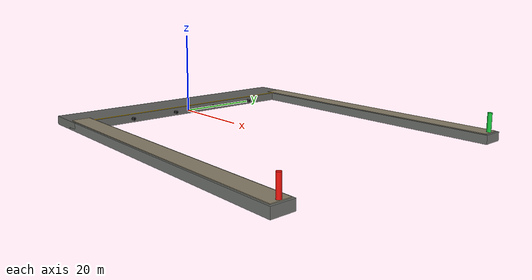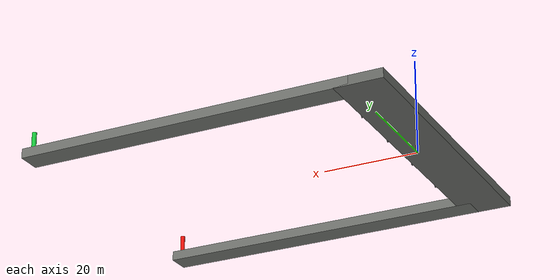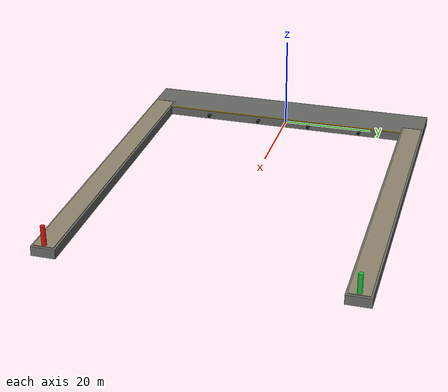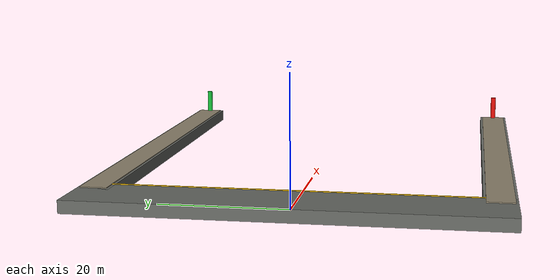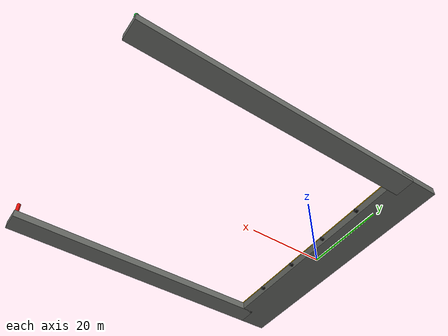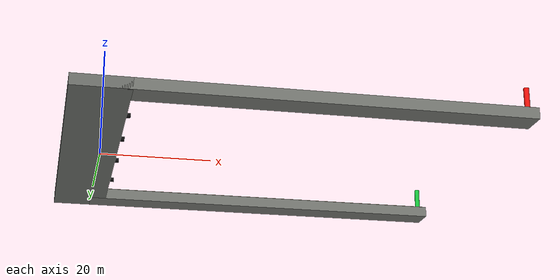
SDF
<?xml version="1.0"?>
<sdf version="1.10"><model name="harbor_breakwater"><static>true</static><link name="harbor">
  <collision name="north_arm_collision"><pose>35 30 1 0 0 0</pose><geometry><box><size>70 5 2</size></box></geometry></collision>
  <collision name="south_arm_collision"><pose>35 -30 1 0 0 0</pose><geometry><box><size>70 5 2</size></box></geometry></collision>
  <collision name="quay_collision"><pose>-2 0 1 0 0 0</pose><geometry><box><size>10 65 2</size></box></geometry></collision>
  <visual name="north_arm"><pose>35 30 1 0 0 0</pose><geometry><box><size>70 5 2</size></box></geometry><material><ambient>0.27 0.28 0.27 1</ambient><diffuse>0.43 0.44 0.42 1</diffuse><specular>0.06 0.06 0.06 1</specular></material></visual>
  <visual name="south_arm"><pose>35 -30 1 0 0 0</pose><geometry><box><size>70 5 2</size></box></geometry><material><ambient>0.27 0.28 0.27 1</ambient><diffuse>0.43 0.44 0.42 1</diffuse></material></visual>
  <visual name="quay"><pose>-2 0 1 0 0 0</pose><geometry><box><size>10 65 2</size></box></geometry><material><ambient>0.24 0.25 0.24 1</ambient><diffuse>0.4 0.41 0.39 1</diffuse></material></visual>
  <visual name="north_walkway"><pose>35 30 2.08 0 0 0</pose><geometry><box><size>69 4.2 0.16</size></box></geometry><material><ambient>0.38 0.35 0.29 1</ambient><diffuse>0.56 0.52 0.43 1</diffuse></material></visual>
  <visual name="south_walkway"><pose>35 -30 2.08 0 0 0</pose><geometry><box><size>69 4.2 0.16</size></box></geometry><material><ambient>0.38 0.35 0.29 1</ambient><diffuse>0.56 0.52 0.43 1</diffuse></material></visual>
  <visual name="quay_hazard_line"><pose>3.05 0 2.08 0 0 0</pose><geometry><box><size>0.25 62 0.12</size></box></geometry><material><ambient>0.95 0.67 0.02 1</ambient><diffuse>1 0.78 0.04 1</diffuse></material></visual>
  <visual name="north_beacon_tower"><pose>69 30 4.2 0 0 0</pose><geometry><cylinder><radius>0.48</radius><length>4.2</length></cylinder></geometry><material><ambient>0.06 0.42 0.13 1</ambient><diffuse>0.08 0.75 0.22 1</diffuse></material></visual>
  <visual name="south_beacon_tower"><pose>69 -30 4.2 0 0 0</pose><geometry><cylinder><radius>0.48</radius><length>4.2</length></cylinder></geometry><material><ambient>0.58 0.04 0.025 1</ambient><diffuse>0.9 0.06 0.035 1</diffuse></material></visual>
  <visual name="fender_01"><pose>3.2 18 1 0 1.5708 0</pose><geometry><cylinder><radius>0.42</radius><length>1.2</length></cylinder></geometry><material><ambient>0.02 0.02 0.02 1</ambient><diffuse>0.045 0.045 0.045 1</diffuse></material></visual>
  <visual name="fender_02"><pose>3.2 6 1 0 1.5708 0</pose><geometry><cylinder><radius>0.42</radius><length>1.2</length></cylinder></geometry><material><ambient>0.02 0.02 0.02 1</ambient><diffuse>0.045 0.045 0.045 1</diffuse></material></visual>
  <visual name="fender_03"><pose>3.2 -6 1 0 1.5708 0</pose><geometry><cylinder><radius>0.42</radius><length>1.2</length></cylinder></geometry><material><ambient>0.02 0.02 0.02 1</ambient><diffuse>0.045 0.045 0.045 1</diffuse></material></visual>
  <visual name="fender_04"><pose>3.2 -18 1 0 1.5708 0</pose><geometry><cylinder><radius>0.42</radius><length>1.2</length></cylinder></geometry><material><ambient>0.02 0.02 0.02 1</ambient><diffuse>0.045 0.045 0.045 1</diffuse></material></visual>
  <light name="green_entrance_light" type="point"><pose>69 30 6.4 0 0 0</pose><cast_shadows>false</cast_shadows><intensity>2</intensity><diffuse>0.05 1 0.2 1</diffuse><attenuation><range>55</range><constant>0.7</constant><linear>0.03</linear><quadratic>0.001</quadratic></attenuation></light>
  <light name="red_entrance_light" type="point"><pose>69 -30 6.4 0 0 0</pose><cast_shadows>false</cast_shadows><intensity>2</intensity><diffuse>1 0.05 0.025 1</diffuse><attenuation><range>55</range><constant>0.7</constant><linear>0.03</linear><quadratic>0.001</quadratic></attenuation></light>
  </link></model></sdf>
